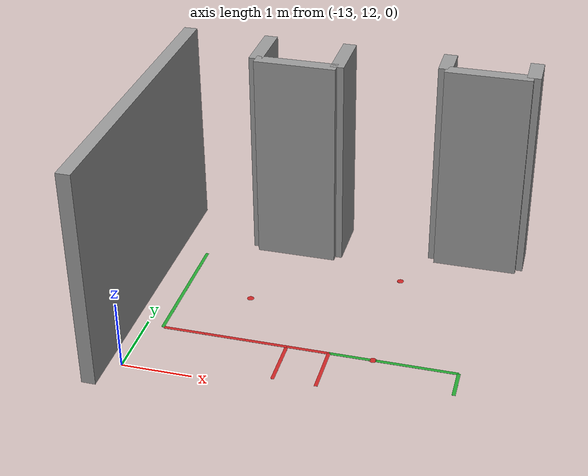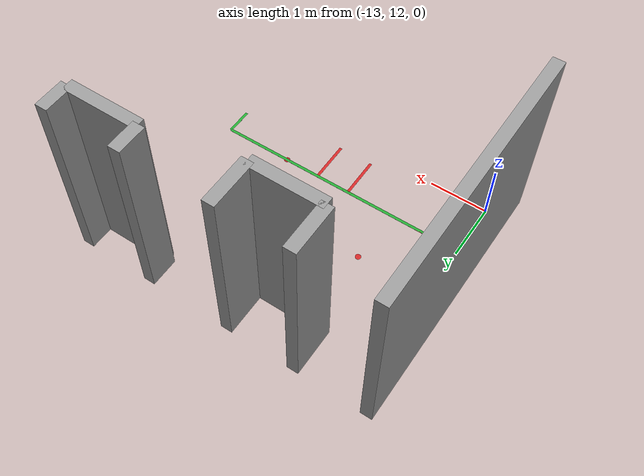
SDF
<sdf version="1.6">
 <world name="square_world">
  <model name="wall6">
   <static>1</static>
   <pose>-13.28 13.8125 1.6 0 0 -1.5708</pose>
   <link name="wall_link">
    <inertial><mass>10000</mass></inertial>
    <collision name="wall_collision">
     <geometry><box><size>4.575 0.2 3.2</size></box></geometry>
     <surface><contact><collide_bitmask>2</collide_bitmask></contact></surface>
    </collision>
    <visual name="wall_visual">
     <geometry><box><size>4.575 0.2 3.2</size></box></geometry>
     <material><script><name>Gazebo/Grey</name><uri>__default__</uri></script></material>
    </visual>
   </link>
  </model>
  <model name="wall33">
   <static>1</static>
   <pose>-8.09 15.85 1.6 0 0 -1.5708</pose>
   <link name="wall_link">
    <inertial><mass>10000</mass></inertial>
    <collision name="wall_collision">
     <geometry><box><size>0.5 0.2 3.2</size></box></geometry>
     <surface><contact><collide_bitmask>2</collide_bitmask></contact></surface>
    </collision>
    <visual name="wall_visual">
     <geometry><box><size>0.5 0.2 3.2</size></box></geometry>
     <material><script><name>Gazebo/Grey</name><uri>__default__</uri></script></material>
    </visual>
   </link>
  </model>
  <model name="wall34">
   <static>1</static>
   <pose>-9.33 15.85 1.6 0 0 -1.5708</pose>
   <link name="wall_link">
    <inertial><mass>10000</mass></inertial>
    <collision name="wall_collision">
     <geometry><box><size>0.5 0.2 3.2</size></box></geometry>
     <surface><contact><collide_bitmask>2</collide_bitmask></contact></surface>
    </collision>
    <visual name="wall_visual">
     <geometry><box><size>0.5 0.2 3.2</size></box></geometry>
     <material><script><name>Gazebo/Grey</name><uri>__default__</uri></script></material>
    </visual>
   </link>
  </model>
  <model name="wall35">
   <static>1</static>
   <pose>-8.71 15.6 1.6 0 -0 0</pose>
   <link name="wall_link">
    <inertial><mass>10000</mass></inertial>
    <collision name="wall_collision">
     <geometry><box><size>1.24 0.2 3.2</size></box></geometry>
     <surface><contact><collide_bitmask>2</collide_bitmask></contact></surface>
    </collision>
    <visual name="wall_visual">
     <geometry><box><size>1.24 0.2 3.2</size></box></geometry>
     <material><script><name>Gazebo/Grey</name><uri>__default__</uri></script></material>
    </visual>
   </link>
  </model>
  <model name="wall36">
   <static>1</static>
   <pose>-10.82 15.69 1.6 0 0 -1.5708</pose>
   <link name="wall_link">
    <inertial><mass>10000</mass></inertial>
    <collision name="wall_collision">
     <geometry><box><size>0.82 0.2 3.2</size></box></geometry>
     <surface><contact><collide_bitmask>2</collide_bitmask></contact></surface>
    </collision>
    <visual name="wall_visual">
     <geometry><box><size>0.82 0.2 3.2</size></box></geometry>
     <material><script><name>Gazebo/Grey</name><uri>__default__</uri></script></material>
    </visual>
   </link>
  </model>
  <model name="wall37">
   <static>1</static>
   <pose>-12.02 15.69 1.6 0 0 -1.5708</pose>
   <link name="wall_link">
    <inertial><mass>10000</mass></inertial>
    <collision name="wall_collision">
     <geometry><box><size>0.82 0.2 3.2</size></box></geometry>
     <surface><contact><collide_bitmask>2</collide_bitmask></contact></surface>
    </collision>
    <visual name="wall_visual">
     <geometry><box><size>0.82 0.2 3.2</size></box></geometry>
     <material><script><name>Gazebo/Grey</name><uri>__default__</uri></script></material>
    </visual>
   </link>
  </model>
  <model name="wall38">
   <static>1</static>
   <pose>-11.42 15.28 1.6 0 -0 0</pose>
   <link name="wall_link">
    <inertial><mass>10000</mass></inertial>
    <collision name="wall_collision">
     <geometry><box><size>1.2 0.2 3.2</size></box></geometry>
     <surface><contact><collide_bitmask>2</collide_bitmask></contact></surface>
    </collision>
    <visual name="wall_visual">
     <geometry><box><size>1.2 0.2 3.2</size></box></geometry>
     <material><script><name>Gazebo/Grey</name><uri>__default__</uri></script></material>
    </visual>
   </link>
  </model>
  <model name="wall548">
   <static>1</static>
   <pose>-10.595 12.935 0 0 -0 0</pose>
   <link name="wall_link">
    <inertial><mass>10000</mass></inertial>
    <collision name="wall_collision">
     <geometry><box><size>4.11 0.05 0.001</size></box></geometry>
     <surface><contact><collide_bitmask>2</collide_bitmask></contact></surface>
    </collision>
    <visual name="wall_visual">
     <geometry><box><size>4.11 0.05 0.001</size></box></geometry>
     <material><script><name>Gazebo/Green</name><uri>__default__</uri></script></material>
    </visual>
   </link>
  </model>
  <model name="wall558">
   <static>1</static>
   <pose>-12.76 13.9075 0 0 0 -1.5708</pose>
   <link name="wall_link">
    <inertial><mass>10000</mass></inertial>
    <collision name="wall_collision">
     <geometry><box><size>1.945 0.05 0.001</size></box></geometry>
     <surface><contact><collide_bitmask>2</collide_bitmask></contact></surface>
    </collision>
    <visual name="wall_visual">
     <geometry><box><size>1.945 0.05 0.001</size></box></geometry>
     <material><script><name>Gazebo/Green</name><uri>__default__</uri></script></material>
    </visual>
   </link>
  </model>
  <model name="wall578">
   <static>1</static>
   <pose>-8.54 12.7075 0 0 0 -1.5708</pose>
   <link name="wall_link">
    <inertial><mass>10000</mass></inertial>
    <collision name="wall_collision">
     <geometry><box><size>0.455 0.05 0.001</size></box></geometry>
     <surface><contact><collide_bitmask>2</collide_bitmask></contact></surface>
    </collision>
    <visual name="wall_visual">
     <geometry><box><size>0.455 0.05 0.001</size></box></geometry>
     <material><script><name>Gazebo/Green</name><uri>__default__</uri></script></material>
    </visual>
   </link>
  </model>
  <model name="wall848">
   <static>1</static>
   <pose>-10.34 12.575 0 0 0 -1.5708</pose>
   <link name="wall_link">
    <inertial><mass>10000</mass></inertial>
    <collision name="wall_collision">
     <geometry><box><size>0.72 0.05 0.001</size></box></geometry>
     <surface><contact><collide_bitmask>2</collide_bitmask></contact></surface>
    </collision>
    <visual name="wall_visual">
     <geometry><box><size>0.72 0.05 0.001</size></box></geometry>
     <material><script><name>Gazebo/Red</name><uri>__default__</uri></script></material>
    </visual>
   </link>
  </model>
  <model name="wall858">
   <static>1</static>
   <pose>-10.94 12.575 0 0 0 -1.5708</pose>
   <link name="wall_link">
    <inertial><mass>10000</mass></inertial>
    <collision name="wall_collision">
     <geometry><box><size>0.72 0.05 0.001</size></box></geometry>
     <surface><contact><collide_bitmask>2</collide_bitmask></contact></surface>
    </collision>
    <visual name="wall_visual">
     <geometry><box><size>0.72 0.05 0.001</size></box></geometry>
     <material><script><name>Gazebo/Red</name><uri>__default__</uri></script></material>
    </visual>
   </link>
  </model>
  <model name="wall878">
   <static>1</static>
   <pose>-10.64 12.935 0 0 -0 0</pose>
   <link name="wall_link">
    <inertial><mass>10000</mass></inertial>
    <collision name="wall_collision">
     <geometry><box><size>0.6 0.05 0.001</size></box></geometry>
     <surface><contact><collide_bitmask>2</collide_bitmask></contact></surface>
    </collision>
    <visual name="wall_visual">
     <geometry><box><size>0.6 0.05 0.001</size></box></geometry>
     <material><script><name>Gazebo/Red</name><uri>__default__</uri></script></material>
    </visual>
   </link>
  </model>
  <model name="wall918">
   <static>1</static>
   <pose>-11.24 12.935 0 0 -0 0</pose>
   <link name="wall_link">
    <inertial><mass>10000</mass></inertial>
    <collision name="wall_collision">
     <geometry><box><size>0.6 0.05 0.001</size></box></geometry>
     <surface><contact><collide_bitmask>2</collide_bitmask></contact></surface>
    </collision>
    <visual name="wall_visual">
     <geometry><box><size>0.6 0.05 0.001</size></box></geometry>
     <material><script><name>Gazebo/Red</name><uri>__default__</uri></script></material>
    </visual>
   </link>
  </model>
  <model name="wall948">
   <static>1</static>
   <pose>-11.84 12.935 0 0 -0 0</pose>
   <link name="wall_link">
    <inertial><mass>10000</mass></inertial>
    <collision name="wall_collision">
     <geometry><box><size>0.6 0.05 0.001</size></box></geometry>
     <surface><contact><collide_bitmask>2</collide_bitmask></contact></surface>
    </collision>
    <visual name="wall_visual">
     <geometry><box><size>0.6 0.05 0.001</size></box></geometry>
     <material><script><name>Gazebo/Red</name><uri>__default__</uri></script></material>
    </visual>
   </link>
  </model>
  <model name="wall978">
   <static>1</static>
   <pose>-12.44 12.935 0 0 -0 0</pose>
   <link name="wall_link">
    <inertial><mass>10000</mass></inertial>
    <collision name="wall_collision">
     <geometry><box><size>0.6 0.05 0.001</size></box></geometry>
     <surface><contact><collide_bitmask>2</collide_bitmask></contact></surface>
    </collision>
    <visual name="wall_visual">
     <geometry><box><size>0.6 0.05 0.001</size></box></geometry>
     <material><script><name>Gazebo/Red</name><uri>__default__</uri></script></material>
    </visual>
   </link>
  </model>
  <model name="wall1208">
   <static>1</static>
   <pose>-9.72 14.88 0 0 -0 0</pose>
   <link name="wall_link">
    <inertial><mass>10000</mass></inertial>
    <collision name="wall_collision">
     <geometry><cylinder><radius>0.05</radius><length>0.001</length></cylinder></geometry>
     <surface><contact><collide_bitmask>2</collide_bitmask></contact></surface>
    </collision>
    <visual name="wall_visual">
     <geometry><cylinder><radius>0.05</radius><length>0.001</length></cylinder></geometry>
     <material><script><name>Gazebo/Red</name><uri>__default__</uri></script></material>
    </visual>
   </link>
  </model>
  <model name="wall1268">
   <static>1</static>
   <pose>-9.72 12.935 0 0 -0 0</pose>
   <link name="wall_link">
    <inertial><mass>10000</mass></inertial>
    <collision name="wall_collision">
     <geometry><cylinder><radius>0.05</radius><length>0.001</length></cylinder></geometry>
     <surface><contact><collide_bitmask>2</collide_bitmask></contact></surface>
    </collision>
    <visual name="wall_visual">
     <geometry><cylinder><radius>0.05</radius><length>0.001</length></cylinder></geometry>
     <material><script><name>Gazebo/Red</name><uri>__default__</uri></script></material>
    </visual>
   </link>
  </model>
  <model name="wall1308">
   <static>1</static>
   <pose>-11.76 13.9075 0 0 0 -1.5708</pose>
   <link name="wall_link">
    <inertial><mass>10000</mass></inertial>
    <collision name="wall_collision">
     <geometry><cylinder><radius>0.05</radius><length>0.001</length></cylinder></geometry>
     <surface><contact><collide_bitmask>2</collide_bitmask></contact></surface>
    </collision>
    <visual name="wall_visual">
     <geometry><cylinder><radius>0.05</radius><length>0.001</length></cylinder></geometry>
     <material><script><name>Gazebo/Red</name><uri>__default__</uri></script></material>
    </visual>
   </link>
  </model>
 </world>
</sdf>
